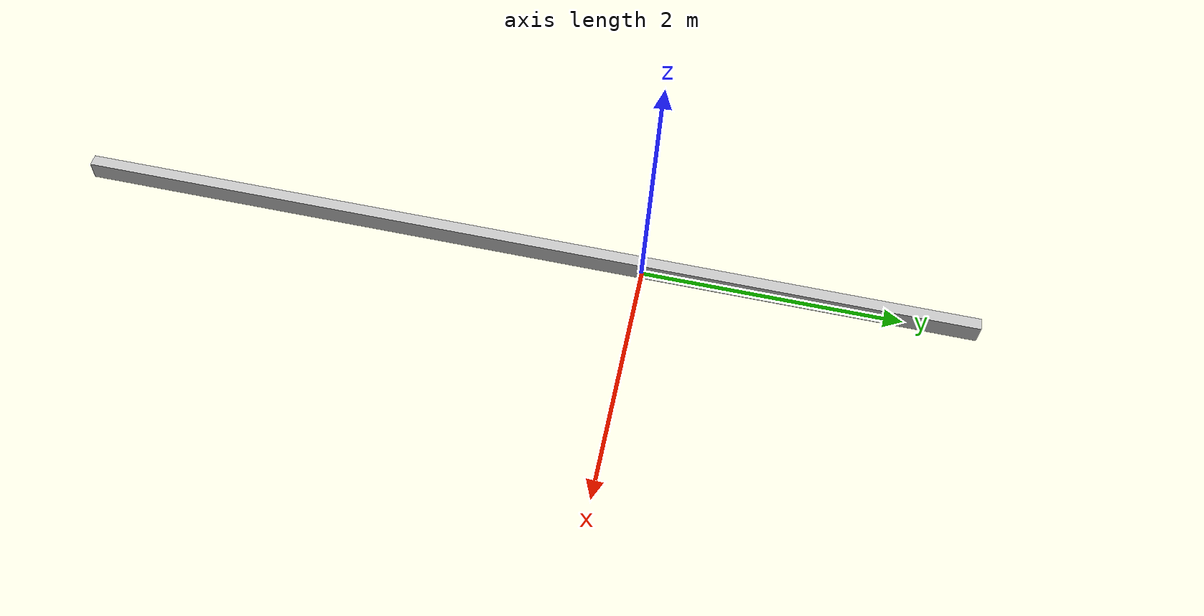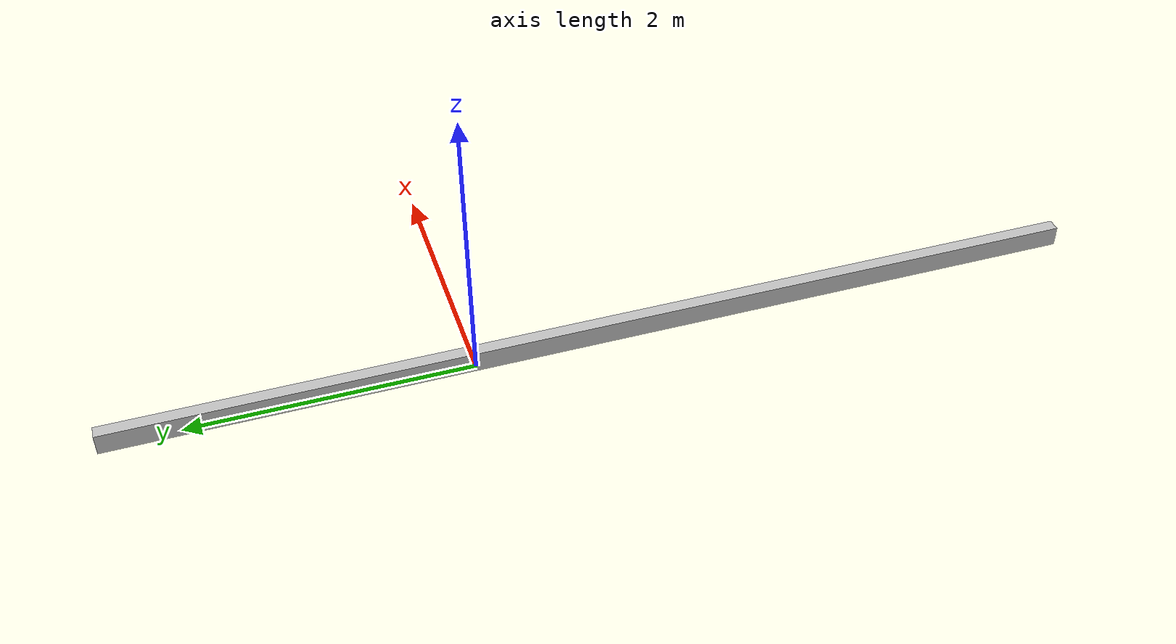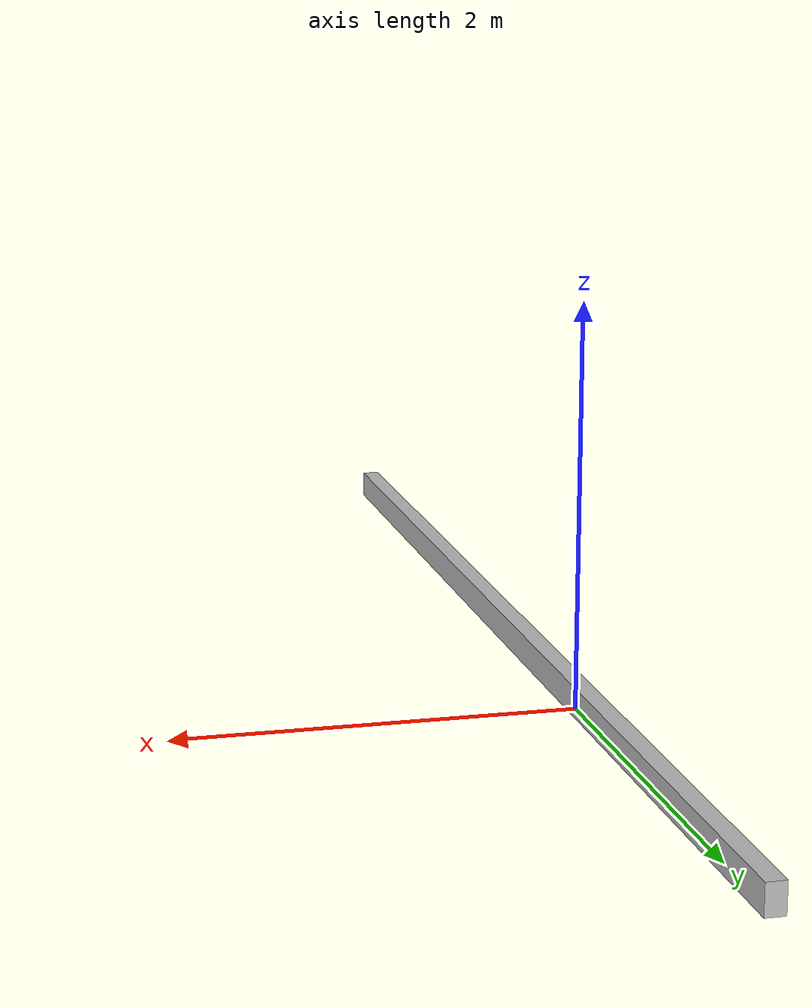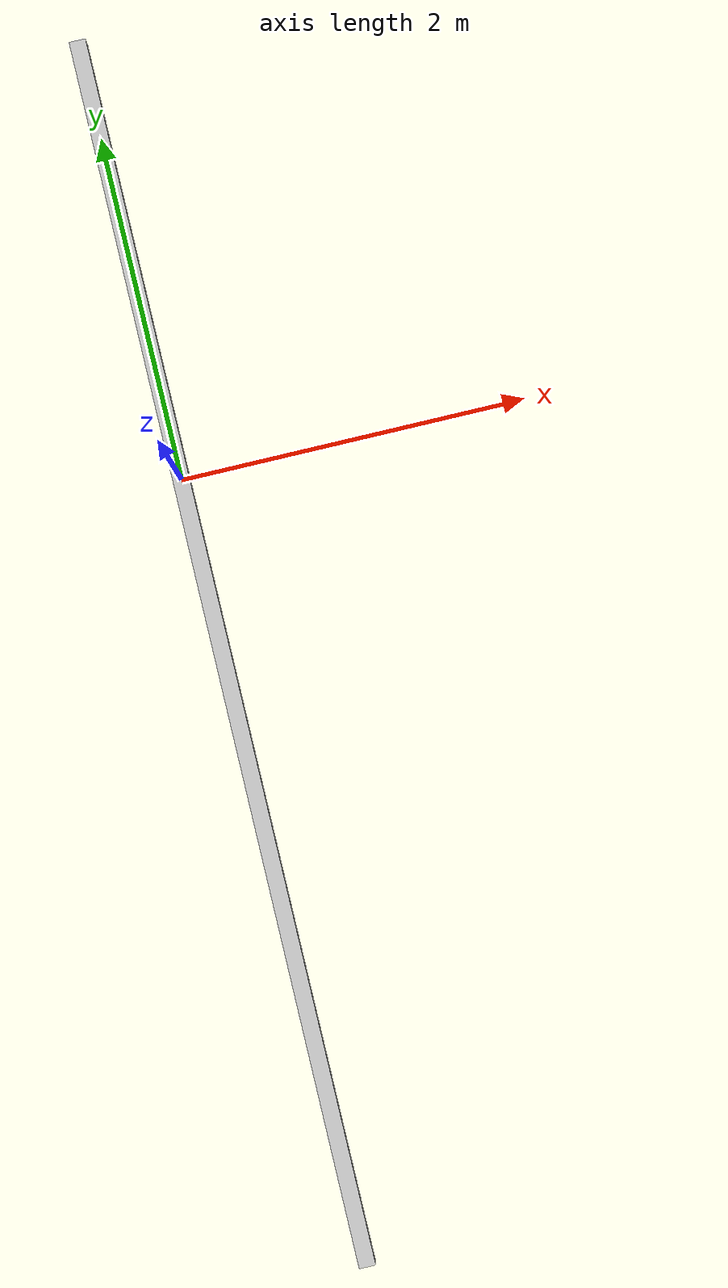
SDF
<?xml version="1.0"?>
<sdf version="1.6">
  <model name="robotics_testlabs/electro_bar_2">
    <link name="1_link">
      <collision name="1_col">
        <geometry>
          <box>
            <size>0.095 7.07 0.15</size>
          </box>
        </geometry>
      </collision>
      <visual name="1_vis">
        <geometry>
          <box>
            <size>0.095 7.07 0.15</size>
          </box>
        </geometry>
        <material>
          <ambient>0.75 0.75 0.75 1</ambient>
        </material>
      </visual>
      <pose>0.0 -0.9925 0.075 0 0 0</pose>
    </link>
    <static>true</static>
  </model>
</sdf>
